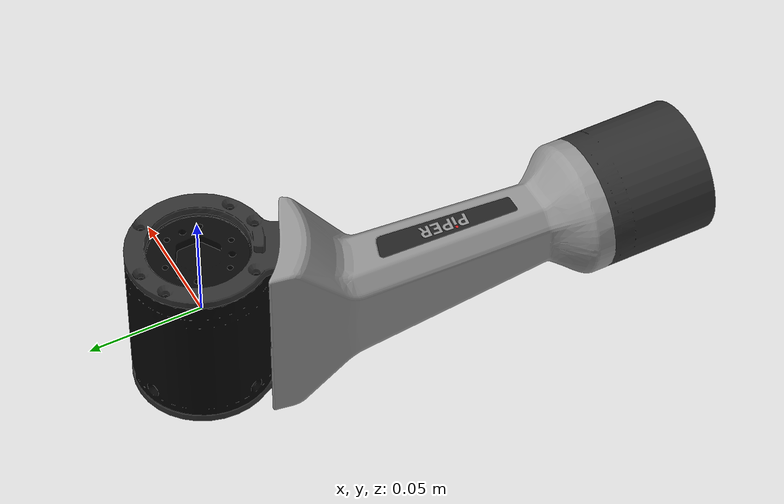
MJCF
<mujoco model="link3">
  <default>
    <default class="visual">
      <geom group="2" type="mesh" contype="0" conaffinity="0"/>
    </default>
    <default class="collision">
      <geom group="3" type="mesh"/>
    </default>
  </default>
  <asset>
    <material name="Material-塑胶.095" specular="0.0" shininess="0.25" rgba="0.588235 0.588235 0.588235 1.000000"/>
    <material name="Material-塑胶.096" specular="0.0" shininess="0.25" rgba="0.588235 0.588235 0.588235 1.000000"/>
    <material name="Material-塑胶.097" specular="0.0" shininess="0.25" rgba="0.588235 0.588235 0.588235 1.000000"/>
    <material name="Material-塑胶.105" specular="0.0" shininess="0.25" rgba="0.588235 0.588235 0.588235 1.000000"/>
    <material name="Material-塑胶.107" specular="0.0" shininess="0.25" rgba="0.588235 0.588235 0.588235 1.000000"/>
    <material name="Material-塑胶.108" specular="0.0" shininess="0.25" rgba="0.588235 0.588235 0.588235 1.000000"/>
    <material name="Material-塑胶.109" specular="0.0" shininess="0.25" rgba="0.588235 0.588235 0.588235 1.000000"/>
    <material name="Material-塑胶.110" specular="0.0" shininess="0.25" rgba="0.588235 0.588235 0.588235 1.000000"/>
    <material name="Material-塑胶.111" specular="0.0" shininess="0.25" rgba="0.588235 0.588235 0.588235 1.000000"/>
    <material name="Material-塑胶.112" specular="0.0" shininess="0.25" rgba="0.588235 0.588235 0.588235 1.000000"/>
    <material name="Material-塑胶.113" specular="0.0" shininess="0.25" rgba="0.588235 0.588235 0.588235 1.000000"/>
    <material name="Material-塑胶.114" specular="0.0" shininess="0.25" rgba="0.588235 0.588235 0.588235 1.000000"/>
    <material name="Material-塑胶.115" specular="0.0" shininess="0.25" rgba="0.588235 0.588235 0.588235 1.000000"/>
    <material name="Material-塑胶.116" specular="0.0" shininess="0.25" rgba="0.588235 0.588235 0.588235 1.000000"/>
    <material name="Material-塑胶.117" specular="0.0" shininess="0.25" rgba="0.588235 0.588235 0.588235 1.000000"/>
    <material name="Material-塑胶__1_.026" specular="0.0" shininess="0.25" rgba="0.141176 0.141176 0.141176 1.000000"/>
    <material name="Material-塑胶__1_.027" specular="0.0" shininess="0.25" rgba="0.141176 0.141176 0.141176 1.000000"/>
    <material name="Material-塑胶__3_.065" specular="0.0" shininess="0.25" rgba="0.815686 0.149020 0.149020 1.000000"/>
    <material name="Material-塑胶__3_.066" specular="0.0" shininess="0.25" rgba="0.815686 0.149020 0.149020 1.000000"/>
    <material name="black_metal.009" specular="0.5" shininess="0.09604875199999999" rgba="0.030034 0.030034 0.030034 1.000000"/>
    <material name="grey_metal.003" specular="0.5" shininess="0.09604875199999999" rgba="0.191349 0.191349 0.191349 1.000000"/>
    <mesh file="link3_0.obj"/>
    <mesh file="link3_1.obj"/>
    <mesh file="link3_2.obj"/>
    <mesh file="link3_3.obj"/>
    <mesh file="link3_4.obj"/>
    <mesh file="link3_5.obj"/>
    <mesh file="link3_6.obj"/>
    <mesh file="link3_7.obj"/>
    <mesh file="link3_8.obj"/>
    <mesh file="link3_9.obj"/>
    <mesh file="link3_10.obj"/>
    <mesh file="link3_11.obj"/>
    <mesh file="link3_12.obj"/>
    <mesh file="link3_13.obj"/>
    <mesh file="link3_14.obj"/>
    <mesh file="link3_15.obj"/>
    <mesh file="link3_16.obj"/>
    <mesh file="link3_17.obj"/>
    <mesh file="link3_18.obj"/>
    <mesh file="link3_19.obj"/>
    <mesh file="link3_20.obj"/>
    <mesh file="link3_collision_0.obj"/>
    <mesh file="link3_collision_1.obj"/>
    <mesh file="link3_collision_2.obj"/>
  </asset>
  <worldbody>
    <body name="link3">
      <geom mesh="link3_0" material="Material-塑胶__1_.027" class="visual"/>
      <geom mesh="link3_1" material="Material-塑胶__3_.066" class="visual"/>
      <geom mesh="link3_2" material="Material-塑胶.117" class="visual"/>
      <geom mesh="link3_3" material="Material-塑胶.116" class="visual"/>
      <geom mesh="link3_4" material="Material-塑胶.115" class="visual"/>
      <geom mesh="link3_5" material="Material-塑胶.114" class="visual"/>
      <geom mesh="link3_6" material="Material-塑胶.113" class="visual"/>
      <geom mesh="link3_7" material="Material-塑胶__1_.026" class="visual"/>
      <geom mesh="link3_8" material="Material-塑胶.112" class="visual"/>
      <geom mesh="link3_9" material="Material-塑胶__3_.065" class="visual"/>
      <geom mesh="link3_10" material="Material-塑胶.111" class="visual"/>
      <geom mesh="link3_11" material="Material-塑胶.110" class="visual"/>
      <geom mesh="link3_12" material="Material-塑胶.109" class="visual"/>
      <geom mesh="link3_13" material="Material-塑胶.108" class="visual"/>
      <geom mesh="link3_14" material="Material-塑胶.107" class="visual"/>
      <geom mesh="link3_15" material="Material-塑胶.105" class="visual"/>
      <geom mesh="link3_16" material="grey_metal.003" class="visual"/>
      <geom mesh="link3_17" material="Material-塑胶.097" class="visual"/>
      <geom mesh="link3_18" material="Material-塑胶.096" class="visual"/>
      <geom mesh="link3_19" material="Material-塑胶.095" class="visual"/>
      <geom mesh="link3_20" material="black_metal.009" class="visual"/>
      <geom mesh="link3_collision_0" rgba="0.9879606053670152 0.9393528848376174 0.2695014827040578 1" class="collision"/>
      <geom mesh="link3_collision_1" rgba="0.6173301141680362 0.6672177458253695 0.5844871843035392 1" class="collision"/>
      <geom mesh="link3_collision_2" rgba="0.33363723466224793 0.8738641755418578 0.518491015788749 1" class="collision"/>
    </body>
  </worldbody>
</mujoco>
